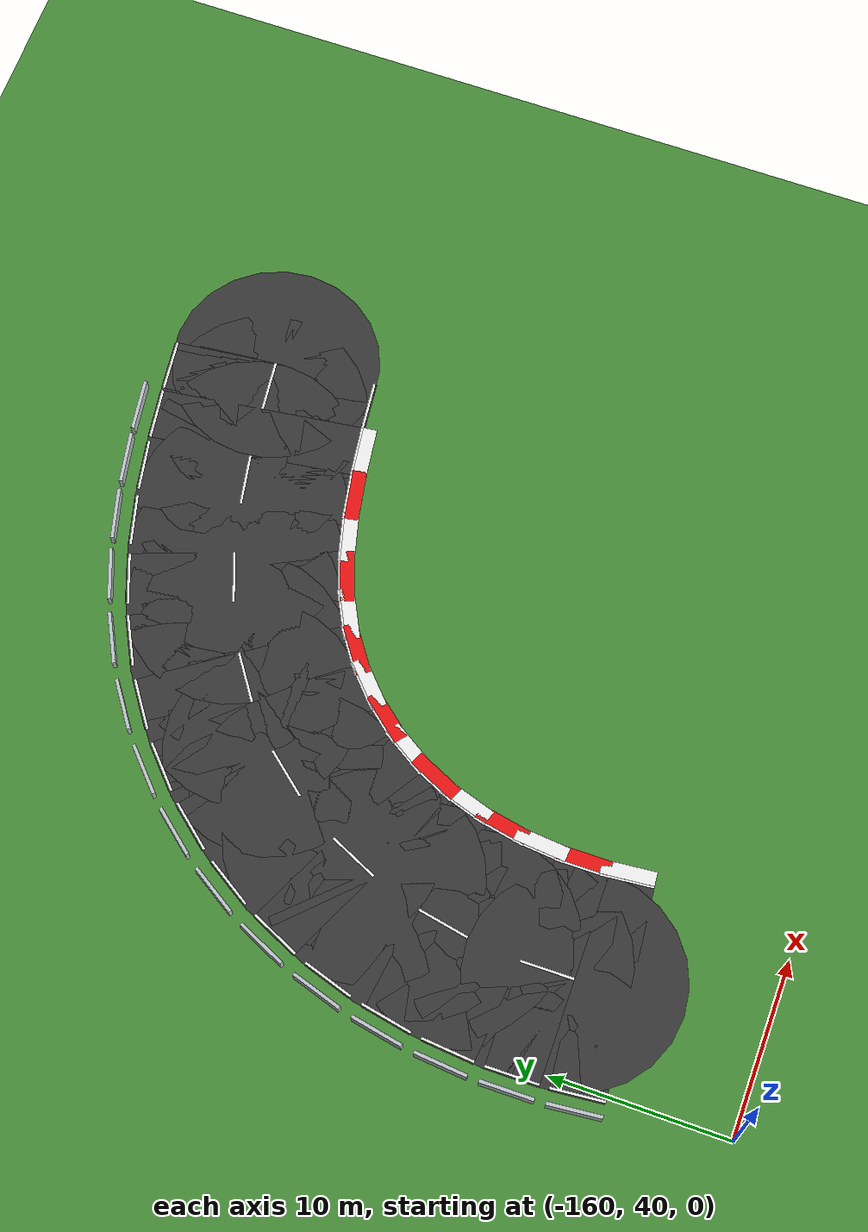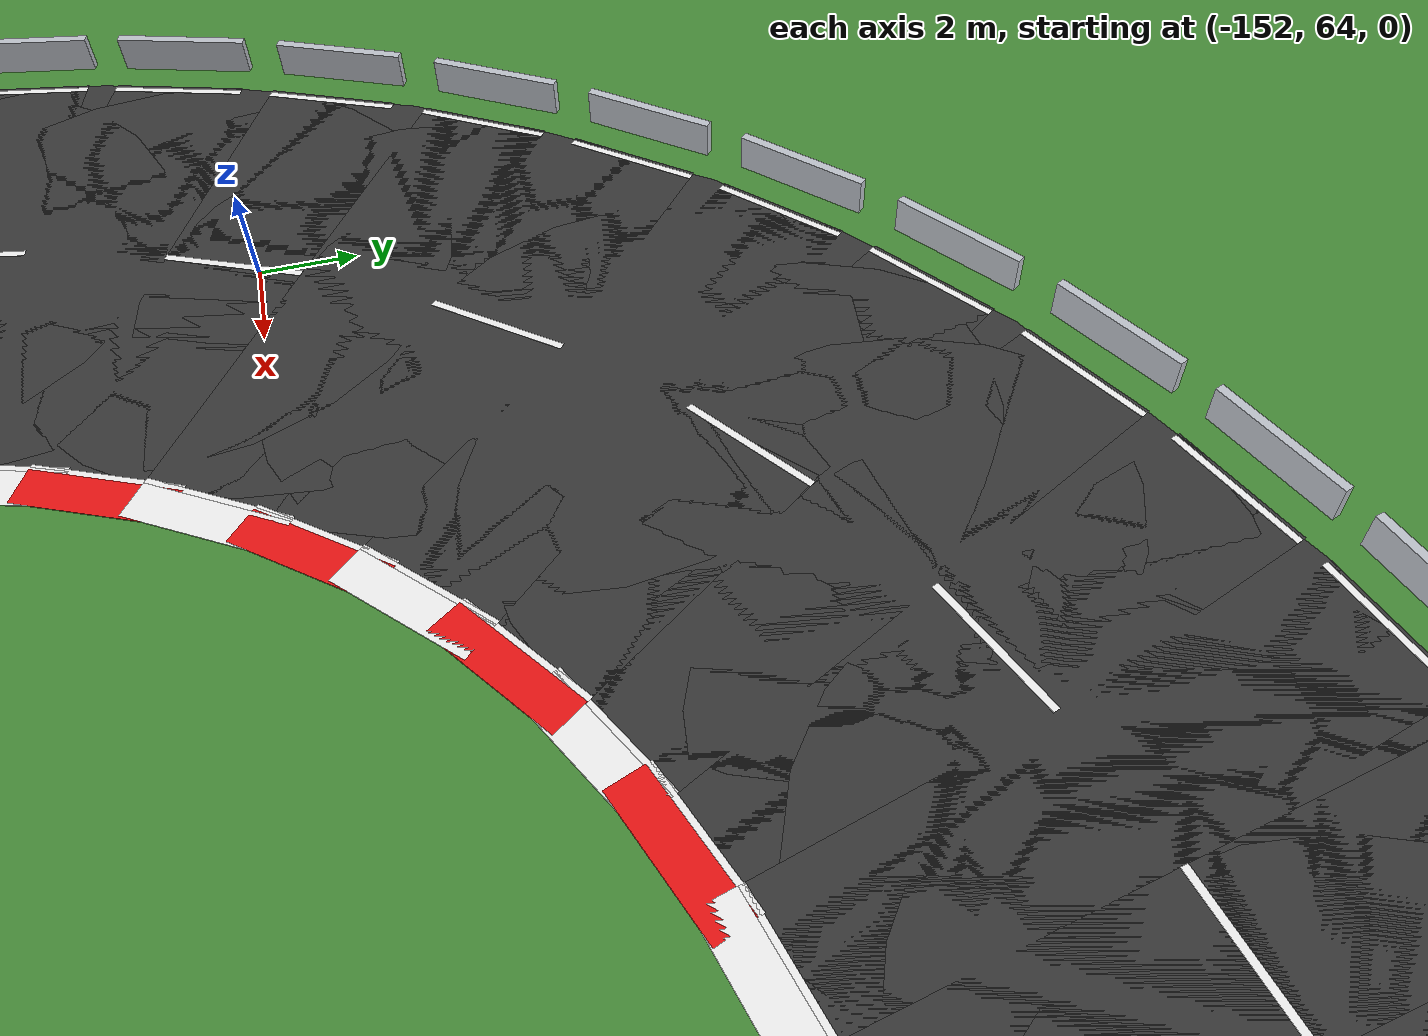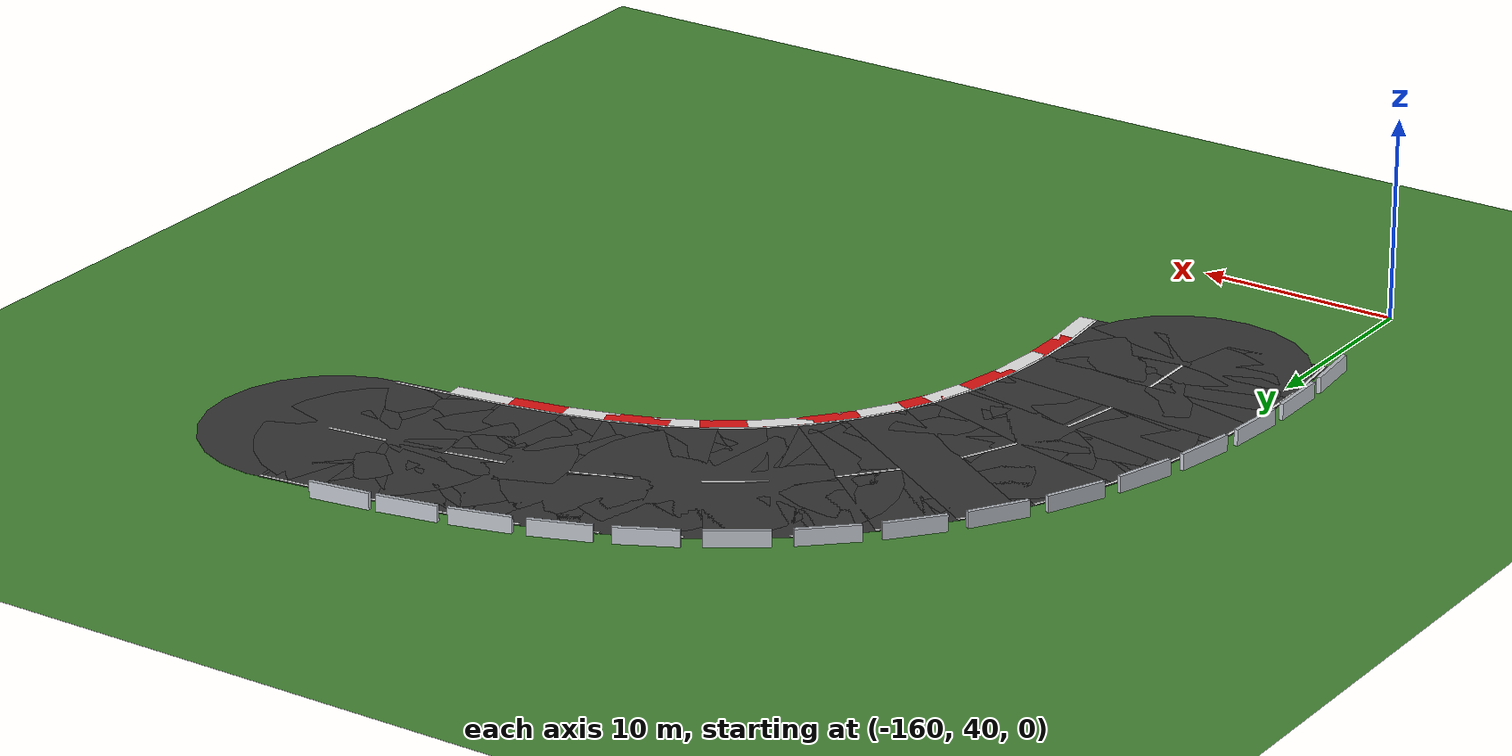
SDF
<sdf version="1.6">
 <world name="sem_silesia_ring_2026">
  <model name="ground_plane">
   <static>true</static>
   <link name="link">
    <collision name="collision">
     <geometry><plane><normal>0 0 1</normal><size>1200 1200</size></plane></geometry>
     <surface><friction><ode><mu>0.6</mu><mu2>0.6</mu2></ode></friction></surface>
    </collision>
    <visual name="visual">
     <geometry><plane><normal>0 0 1</normal><size>1200 1200</size></plane></geometry>
     <material><ambient>0.28 0.55 0.22 1</ambient><diffuse>0.28 0.55 0.22 1</diffuse></material>
    </visual>
   </link>
  </model>
  <model name="road_s366">
   <static>true</static>
   <pose>-127.7644 77.7437 0.0030 0 0 -3.0303</pose>
   <link name="link">
    <visual name="v">
     <geometry><box><size>3.0025 12.0000 0.0060</size></box></geometry>
     <material><ambient>0.22 0.22 0.22 1</ambient><diffuse>0.22 0.22 0.22 1</diffuse></material>
    </visual>
    <collision name="c">
     <geometry><box><size>3.0025 12.0000 0.0060</size></box></geometry>
     <surface><friction><ode><mu>0.9</mu><mu2>0.9</mu2></ode></friction></surface>
    </collision>
   </link>
  </model>
  <model name="road_jnt366">
   <static>true</static>
   <pose>-126.2725 77.9104 0.0030 0 0 0</pose>
   <link name="link">
    <visual name="v">
     <geometry><cylinder><radius>6.0000</radius><length>0.0060</length></cylinder></geometry>
     <material><ambient>0.22 0.22 0.22 1</ambient><diffuse>0.22 0.22 0.22 1</diffuse></material>
    </visual>
    <collision name="c">
     <geometry><cylinder><radius>6.0000</radius><length>0.0060</length></cylinder></geometry>
     <surface><friction><ode><mu>0.9</mu><mu2>0.9</mu2></ode></friction></surface>
    </collision>
   </link>
  </model>
  <model name="wl_L_s366">
   <static>true</static>
   <pose>-127.1150 71.9299 0.0070 0 0 -3.0303</pose>
   <link name="link">
    <visual name="v">
     <geometry><box><size>3.0025 0.1500 0.0080</size></box></geometry>
     <material><ambient>0.95 0.95 0.95 1</ambient><diffuse>0.95 0.95 0.95 1</diffuse></material>
    </visual>
   </link>
  </model>
  <model name="wl_R_s366">
   <static>true</static>
   <pose>-128.4139 83.5576 0.0070 0 0 -3.0303</pose>
   <link name="link">
    <visual name="v">
     <geometry><box><size>3.0025 0.1500 0.0080</size></box></geometry>
     <material><ambient>0.95 0.95 0.95 1</ambient><diffuse>0.95 0.95 0.95 1</diffuse></material>
    </visual>
   </link>
  </model>
  <model name="cd_s366">
   <static>true</static>
   <pose>-127.7644 77.7437 0.0070 0 0 -3.0303</pose>
   <link name="link">
    <visual name="v">
     <geometry><box><size>3.0025 0.1500 0.0080</size></box></geometry>
     <material><ambient>0.95 0.95 0.95 1</ambient><diffuse>0.95 0.95 0.95 1</diffuse></material>
    </visual>
   </link>
  </model>
  <model name="road_s367">
   <static>true</static>
   <pose>-130.7433 77.3702 0.0030 0 0 -3.0033</pose>
   <link name="link">
    <visual name="v">
     <geometry><box><size>3.0024 12.0000 0.0060</size></box></geometry>
     <material><ambient>0.22 0.22 0.22 1</ambient><diffuse>0.22 0.22 0.22 1</diffuse></material>
    </visual>
    <collision name="c">
     <geometry><box><size>3.0024 12.0000 0.0060</size></box></geometry>
     <surface><friction><ode><mu>0.9</mu><mu2>0.9</mu2></ode></friction></surface>
    </collision>
   </link>
  </model>
  <model name="road_jnt367">
   <static>true</static>
   <pose>-129.2564 77.5771 0.0030 0 0 0</pose>
   <link name="link">
    <visual name="v">
     <geometry><cylinder><radius>6.0000</radius><length>0.0060</length></cylinder></geometry>
     <material><ambient>0.22 0.22 0.22 1</ambient><diffuse>0.22 0.22 0.22 1</diffuse></material>
    </visual>
    <collision name="c">
     <geometry><cylinder><radius>6.0000</radius><length>0.0060</length></cylinder></geometry>
     <surface><friction><ode><mu>0.9</mu><mu2>0.9</mu2></ode></friction></surface>
    </collision>
   </link>
  </model>
  <model name="wl_L_s367">
   <static>true</static>
   <pose>-129.9370 71.5760 0.0070 0 0 -3.0033</pose>
   <link name="link">
    <visual name="v">
     <geometry><box><size>3.0024 0.1500 0.0080</size></box></geometry>
     <material><ambient>0.95 0.95 0.95 1</ambient><diffuse>0.95 0.95 0.95 1</diffuse></material>
    </visual>
   </link>
  </model>
  <model name="wl_R_s367">
   <static>true</static>
   <pose>-131.5495 83.1643 0.0070 0 0 -3.0033</pose>
   <link name="link">
    <visual name="v">
     <geometry><box><size>3.0024 0.1500 0.0080</size></box></geometry>
     <material><ambient>0.95 0.95 0.95 1</ambient><diffuse>0.95 0.95 0.95 1</diffuse></material>
    </visual>
   </link>
  </model>
  <model name="kerb_L_367">
   <static>true</static>
   <pose>-129.8750 71.1303 0.0120 0 0 -3.0033</pose>
   <link name="link">
    <visual name="v">
     <geometry><box><size>3.0024 0.8000 0.0160</size></box></geometry>
     <material><ambient>0.95 0.95 0.95 1</ambient><diffuse>0.95 0.95 0.95 1</diffuse></material>
    </visual>
   </link>
  </model>
  <model name="arm_outR_367">
   <static>true</static>
   <pose>-131.6804 84.1053 0.4000 0 0 -3.0033</pose>
   <link name="link">
    <visual name="v">
     <geometry><box><size>3.0024 0.2000 0.8000</size></box></geometry>
     <material><ambient>0.75 0.77 0.80 1</ambient><diffuse>0.75 0.77 0.80 1</diffuse></material>
    </visual>
    <collision name="c">
     <geometry><box><size>3.0024 0.2000 0.8000</size></box></geometry>
     <surface><friction><ode><mu>0.8</mu><mu2>0.8</mu2></ode></friction></surface>
    </collision>
   </link>
  </model>
  <model name="road_s368">
   <static>true</static>
   <pose>-133.7053 76.8858 0.0030 0 0 -2.9557</pose>
   <link name="link">
    <visual name="v">
     <geometry><box><size>3.0021 12.0000 0.0060</size></box></geometry>
     <material><ambient>0.22 0.22 0.22 1</ambient><diffuse>0.22 0.22 0.22 1</diffuse></material>
    </visual>
    <collision name="c">
     <geometry><box><size>3.0021 12.0000 0.0060</size></box></geometry>
     <surface><friction><ode><mu>0.9</mu><mu2>0.9</mu2></ode></friction></surface>
    </collision>
   </link>
  </model>
  <model name="road_jnt368">
   <static>true</static>
   <pose>-132.2301 77.1633 0.0030 0 0 0</pose>
   <link name="link">
    <visual name="v">
     <geometry><cylinder><radius>6.0000</radius><length>0.0060</length></cylinder></geometry>
     <material><ambient>0.22 0.22 0.22 1</ambient><diffuse>0.22 0.22 0.22 1</diffuse></material>
    </visual>
    <collision name="c">
     <geometry><cylinder><radius>6.0000</radius><length>0.0060</length></cylinder></geometry>
     <surface><friction><ode><mu>0.9</mu><mu2>0.9</mu2></ode></friction></surface>
    </collision>
   </link>
  </model>
  <model name="wl_L_s368">
   <static>true</static>
   <pose>-132.6238 71.1366 0.0070 0 0 -2.9557</pose>
   <link name="link">
    <visual name="v">
     <geometry><box><size>3.0021 0.1500 0.0080</size></box></geometry>
     <material><ambient>0.95 0.95 0.95 1</ambient><diffuse>0.95 0.95 0.95 1</diffuse></material>
    </visual>
   </link>
  </model>
  <model name="wl_R_s368">
   <static>true</static>
   <pose>-134.7868 82.6350 0.0070 0 0 -2.9557</pose>
   <link name="link">
    <visual name="v">
     <geometry><box><size>3.0021 0.1500 0.0080</size></box></geometry>
     <material><ambient>0.95 0.95 0.95 1</ambient><diffuse>0.95 0.95 0.95 1</diffuse></material>
    </visual>
   </link>
  </model>
  <model name="cd_s368">
   <static>true</static>
   <pose>-133.7053 76.8858 0.0070 0 0 -2.9557</pose>
   <link name="link">
    <visual name="v">
     <geometry><box><size>3.0021 0.1500 0.0080</size></box></geometry>
     <material><ambient>0.95 0.95 0.95 1</ambient><diffuse>0.95 0.95 0.95 1</diffuse></material>
    </visual>
   </link>
  </model>
  <model name="kerb_L_368">
   <static>true</static>
   <pose>-132.5407 70.6944 0.0120 0 0 -2.9557</pose>
   <link name="link">
    <visual name="v">
     <geometry><box><size>3.0021 0.8000 0.0160</size></box></geometry>
     <material><ambient>0.92 0.08 0.08 1</ambient><diffuse>0.92 0.08 0.08 1</diffuse></material>
    </visual>
   </link>
  </model>
  <model name="arm_outR_368">
   <static>true</static>
   <pose>-134.9624 83.5686 0.4000 0 0 -2.9557</pose>
   <link name="link">
    <visual name="v">
     <geometry><box><size>3.0021 0.2000 0.8000</size></box></geometry>
     <material><ambient>0.75 0.77 0.80 1</ambient><diffuse>0.75 0.77 0.80 1</diffuse></material>
    </visual>
    <collision name="c">
     <geometry><box><size>3.0021 0.2000 0.8000</size></box></geometry>
     <surface><friction><ode><mu>0.8</mu><mu2>0.8</mu2></ode></friction></surface>
    </collision>
   </link>
  </model>
  <model name="road_s369">
   <static>true</static>
   <pose>-136.6322 76.2275 0.0030 0 0 -2.8851</pose>
   <link name="link">
    <visual name="v">
     <geometry><box><size>3.0017 12.0000 0.0060</size></box></geometry>
     <material><ambient>0.22 0.22 0.22 1</ambient><diffuse>0.22 0.22 0.22 1</diffuse></material>
    </visual>
    <collision name="c">
     <geometry><box><size>3.0017 12.0000 0.0060</size></box></geometry>
     <surface><friction><ode><mu>0.9</mu><mu2>0.9</mu2></ode></friction></surface>
    </collision>
   </link>
  </model>
  <model name="road_jnt369">
   <static>true</static>
   <pose>-135.1805 76.6083 0.0030 0 0 0</pose>
   <link name="link">
    <visual name="v">
     <geometry><cylinder><radius>6.0000</radius><length>0.0060</length></cylinder></geometry>
     <material><ambient>0.22 0.22 0.22 1</ambient><diffuse>0.22 0.22 0.22 1</diffuse></material>
    </visual>
    <collision name="c">
     <geometry><cylinder><radius>6.0000</radius><length>0.0060</length></cylinder></geometry>
     <surface><friction><ode><mu>0.9</mu><mu2>0.9</mu2></ode></friction></surface>
    </collision>
   </link>
  </model>
  <model name="wl_L_s369">
   <static>true</static>
   <pose>-135.1480 70.5689 0.0070 0 0 -2.8851</pose>
   <link name="link">
    <visual name="v">
     <geometry><box><size>3.0017 0.1500 0.0080</size></box></geometry>
     <material><ambient>0.95 0.95 0.95 1</ambient><diffuse>0.95 0.95 0.95 1</diffuse></material>
    </visual>
   </link>
  </model>
  <model name="wl_R_s369">
   <static>true</static>
   <pose>-138.1164 81.8861 0.0070 0 0 -2.8851</pose>
   <link name="link">
    <visual name="v">
     <geometry><box><size>3.0017 0.1500 0.0080</size></box></geometry>
     <material><ambient>0.95 0.95 0.95 1</ambient><diffuse>0.95 0.95 0.95 1</diffuse></material>
    </visual>
   </link>
  </model>
  <model name="kerb_L_369">
   <static>true</static>
   <pose>-135.0339 70.1337 0.0120 0 0 -2.8851</pose>
   <link name="link">
    <visual name="v">
     <geometry><box><size>3.0017 0.8000 0.0160</size></box></geometry>
     <material><ambient>0.95 0.95 0.95 1</ambient><diffuse>0.95 0.95 0.95 1</diffuse></material>
    </visual>
   </link>
  </model>
  <model name="arm_outR_369">
   <static>true</static>
   <pose>-138.3574 82.8050 0.4000 0 0 -2.8851</pose>
   <link name="link">
    <visual name="v">
     <geometry><box><size>3.0017 0.2000 0.8000</size></box></geometry>
     <material><ambient>0.75 0.77 0.80 1</ambient><diffuse>0.75 0.77 0.80 1</diffuse></material>
    </visual>
    <collision name="c">
     <geometry><box><size>3.0017 0.2000 0.8000</size></box></geometry>
     <surface><friction><ode><mu>0.8</mu><mu2>0.8</mu2></ode></friction></surface>
    </collision>
   </link>
  </model>
  <model name="road_s370">
   <static>true</static>
   <pose>-139.4925 75.3294 0.0030 0 0 -2.7896</pose>
   <link name="link">
    <visual name="v">
     <geometry><box><size>3.0011 12.0000 0.0060</size></box></geometry>
     <material><ambient>0.22 0.22 0.22 1</ambient><diffuse>0.22 0.22 0.22 1</diffuse></material>
    </visual>
    <collision name="c">
     <geometry><box><size>3.0011 12.0000 0.0060</size></box></geometry>
     <surface><friction><ode><mu>0.9</mu><mu2>0.9</mu2></ode></friction></surface>
    </collision>
   </link>
  </model>
  <model name="road_jnt370">
   <static>true</static>
   <pose>-138.0839 75.8468 0.0030 0 0 0</pose>
   <link name="link">
    <visual name="v">
     <geometry><cylinder><radius>6.0000</radius><length>0.0060</length></cylinder></geometry>
     <material><ambient>0.22 0.22 0.22 1</ambient><diffuse>0.22 0.22 0.22 1</diffuse></material>
    </visual>
    <collision name="c">
     <geometry><cylinder><radius>6.0000</radius><length>0.0060</length></cylinder></geometry>
     <surface><friction><ode><mu>0.9</mu><mu2>0.9</mu2></ode></friction></surface>
    </collision>
   </link>
  </model>
  <model name="wl_L_s370">
   <static>true</static>
   <pose>-137.4756 69.8381 0.0070 0 0 -2.7896</pose>
   <link name="link">
    <visual name="v">
     <geometry><box><size>3.0011 0.1500 0.0080</size></box></geometry>
     <material><ambient>0.95 0.95 0.95 1</ambient><diffuse>0.95 0.95 0.95 1</diffuse></material>
    </visual>
   </link>
  </model>
  <model name="wl_R_s370">
   <static>true</static>
   <pose>-141.5094 80.8207 0.0070 0 0 -2.7896</pose>
   <link name="link">
    <visual name="v">
     <geometry><box><size>3.0011 0.1500 0.0080</size></box></geometry>
     <material><ambient>0.95 0.95 0.95 1</ambient><diffuse>0.95 0.95 0.95 1</diffuse></material>
    </visual>
   </link>
  </model>
  <model name="cd_s370">
   <static>true</static>
   <pose>-139.4925 75.3294 0.0070 0 0 -2.7896</pose>
   <link name="link">
    <visual name="v">
     <geometry><box><size>3.0011 0.1500 0.0080</size></box></geometry>
     <material><ambient>0.95 0.95 0.95 1</ambient><diffuse>0.95 0.95 0.95 1</diffuse></material>
    </visual>
   </link>
  </model>
  <model name="kerb_L_370">
   <static>true</static>
   <pose>-137.3204 69.4157 0.0120 0 0 -2.7896</pose>
   <link name="link">
    <visual name="v">
     <geometry><box><size>3.0011 0.8000 0.0160</size></box></geometry>
     <material><ambient>0.92 0.08 0.08 1</ambient><diffuse>0.92 0.08 0.08 1</diffuse></material>
    </visual>
   </link>
  </model>
  <model name="arm_outR_370">
   <static>true</static>
   <pose>-141.8369 81.7125 0.4000 0 0 -2.7896</pose>
   <link name="link">
    <visual name="v">
     <geometry><box><size>3.0011 0.2000 0.8000</size></box></geometry>
     <material><ambient>0.75 0.77 0.80 1</ambient><diffuse>0.75 0.77 0.80 1</diffuse></material>
    </visual>
    <collision name="c">
     <geometry><box><size>3.0011 0.2000 0.8000</size></box></geometry>
     <surface><friction><ode><mu>0.8</mu><mu2>0.8</mu2></ode></friction></surface>
    </collision>
   </link>
  </model>
  <model name="road_s371">
   <static>true</static>
   <pose>-142.2370 74.1297 0.0030 0 0 -2.6694</pose>
   <link name="link">
    <visual name="v">
     <geometry><box><size>3.0004 12.0000 0.0060</size></box></geometry>
     <material><ambient>0.22 0.22 0.22 1</ambient><diffuse>0.22 0.22 0.22 1</diffuse></material>
    </visual>
    <collision name="c">
     <geometry><box><size>3.0004 12.0000 0.0060</size></box></geometry>
     <surface><friction><ode><mu>0.9</mu><mu2>0.9</mu2></ode></friction></surface>
    </collision>
   </link>
  </model>
  <model name="road_jnt371">
   <static>true</static>
   <pose>-140.9010 74.8121 0.0030 0 0 0</pose>
   <link name="link">
    <visual name="v">
     <geometry><cylinder><radius>6.0000</radius><length>0.0060</length></cylinder></geometry>
     <material><ambient>0.22 0.22 0.22 1</ambient><diffuse>0.22 0.22 0.22 1</diffuse></material>
    </visual>
    <collision name="c">
     <geometry><cylinder><radius>6.0000</radius><length>0.0060</length></cylinder></geometry>
     <surface><friction><ode><mu>0.9</mu><mu2>0.9</mu2></ode></friction></surface>
    </collision>
   </link>
  </model>
  <model name="wl_L_s371">
   <static>true</static>
   <pose>-139.5761 68.9199 0.0070 0 0 -2.6694</pose>
   <link name="link">
    <visual name="v">
     <geometry><box><size>3.0004 0.1500 0.0080</size></box></geometry>
     <material><ambient>0.95 0.95 0.95 1</ambient><diffuse>0.95 0.95 0.95 1</diffuse></material>
    </visual>
   </link>
  </model>
  <model name="wl_R_s371">
   <static>true</static>
   <pose>-144.8979 79.3395 0.0070 0 0 -2.6694</pose>
   <link name="link">
    <visual name="v">
     <geometry><box><size>3.0004 0.1500 0.0080</size></box></geometry>
     <material><ambient>0.95 0.95 0.95 1</ambient><diffuse>0.95 0.95 0.95 1</diffuse></material>
    </visual>
   </link>
  </model>
  <model name="kerb_L_371">
   <static>true</static>
   <pose>-139.3714 68.5192 0.0120 0 0 -2.6694</pose>
   <link name="link">
    <visual name="v">
     <geometry><box><size>3.0004 0.8000 0.0160</size></box></geometry>
     <material><ambient>0.95 0.95 0.95 1</ambient><diffuse>0.95 0.95 0.95 1</diffuse></material>
    </visual>
   </link>
  </model>
  <model name="arm_outR_371">
   <static>true</static>
   <pose>-145.3301 80.1856 0.4000 0 0 -2.6694</pose>
   <link name="link">
    <visual name="v">
     <geometry><box><size>3.0004 0.2000 0.8000</size></box></geometry>
     <material><ambient>0.75 0.77 0.80 1</ambient><diffuse>0.75 0.77 0.80 1</diffuse></material>
    </visual>
    <collision name="c">
     <geometry><box><size>3.0004 0.2000 0.8000</size></box></geometry>
     <surface><friction><ode><mu>0.8</mu><mu2>0.8</mu2></ode></friction></surface>
    </collision>
   </link>
  </model>
  <model name="road_s372">
   <static>true</static>
   <pose>-144.8017 72.5869 0.0030 0 0 -2.5307</pose>
   <link name="link">
    <visual name="v">
     <geometry><box><size>3.0000 12.0000 0.0060</size></box></geometry>
     <material><ambient>0.22 0.22 0.22 1</ambient><diffuse>0.22 0.22 0.22 1</diffuse></material>
    </visual>
    <collision name="c">
     <geometry><box><size>3.0000 12.0000 0.0060</size></box></geometry>
     <surface><friction><ode><mu>0.9</mu><mu2>0.9</mu2></ode></friction></surface>
    </collision>
   </link>
  </model>
  <model name="road_jnt372">
   <static>true</static>
   <pose>-143.5730 73.4474 0.0030 0 0 0</pose>
   <link name="link">
    <visual name="v">
     <geometry><cylinder><radius>6.0000</radius><length>0.0060</length></cylinder></geometry>
     <material><ambient>0.22 0.22 0.22 1</ambient><diffuse>0.22 0.22 0.22 1</diffuse></material>
    </visual>
    <collision name="c">
     <geometry><cylinder><radius>6.0000</radius><length>0.0060</length></cylinder></geometry>
     <surface><friction><ode><mu>0.9</mu><mu2>0.9</mu2></ode></friction></surface>
    </collision>
   </link>
  </model>
  <model name="wl_L_s372">
   <static>true</static>
   <pose>-141.4461 67.7950 0.0070 0 0 -2.5307</pose>
   <link name="link">
    <visual name="v">
     <geometry><box><size>3.0000 0.1500 0.0080</size></box></geometry>
     <material><ambient>0.95 0.95 0.95 1</ambient><diffuse>0.95 0.95 0.95 1</diffuse></material>
    </visual>
   </link>
  </model>
  <model name="wl_R_s372">
   <static>true</static>
   <pose>-148.1574 77.3788 0.0070 0 0 -2.5307</pose>
   <link name="link">
    <visual name="v">
     <geometry><box><size>3.0000 0.1500 0.0080</size></box></geometry>
     <material><ambient>0.95 0.95 0.95 1</ambient><diffuse>0.95 0.95 0.95 1</diffuse></material>
    </visual>
   </link>
  </model>
  <model name="cd_s372">
   <static>true</static>
   <pose>-144.8017 72.5869 0.0070 0 0 -2.5307</pose>
   <link name="link">
    <visual name="v">
     <geometry><box><size>3.0000 0.1500 0.0080</size></box></geometry>
     <material><ambient>0.95 0.95 0.95 1</ambient><diffuse>0.95 0.95 0.95 1</diffuse></material>
    </visual>
   </link>
  </model>
  <model name="kerb_L_372">
   <static>true</static>
   <pose>-141.1880 67.4264 0.0120 0 0 -2.5307</pose>
   <link name="link">
    <visual name="v">
     <geometry><box><size>3.0000 0.8000 0.0160</size></box></geometry>
     <material><ambient>0.92 0.08 0.08 1</ambient><diffuse>0.92 0.08 0.08 1</diffuse></material>
    </visual>
   </link>
  </model>
  <model name="arm_outR_372">
   <static>true</static>
   <pose>-148.7023 78.1570 0.4000 0 0 -2.5307</pose>
   <link name="link">
    <visual name="v">
     <geometry><box><size>3.0000 0.2000 0.8000</size></box></geometry>
     <material><ambient>0.75 0.77 0.80 1</ambient><diffuse>0.75 0.77 0.80 1</diffuse></material>
    </visual>
    <collision name="c">
     <geometry><box><size>3.0000 0.2000 0.8000</size></box></geometry>
     <surface><friction><ode><mu>0.8</mu><mu2>0.8</mu2></ode></friction></surface>
    </collision>
   </link>
  </model>
  <model name="road_s373">
   <static>true</static>
   <pose>-147.1307 70.7067 0.0030 0 0 -2.3942</pose>
   <link name="link">
    <visual name="v">
     <geometry><box><size>3.0004 12.0000 0.0060</size></box></geometry>
     <material><ambient>0.22 0.22 0.22 1</ambient><diffuse>0.22 0.22 0.22 1</diffuse></material>
    </visual>
    <collision name="c">
     <geometry><box><size>3.0004 12.0000 0.0060</size></box></geometry>
     <surface><friction><ode><mu>0.9</mu><mu2>0.9</mu2></ode></friction></surface>
    </collision>
   </link>
  </model>
  <model name="road_jnt373">
   <static>true</static>
   <pose>-146.0304 71.7265 0.0030 0 0 0</pose>
   <link name="link">
    <visual name="v">
     <geometry><cylinder><radius>6.0000</radius><length>0.0060</length></cylinder></geometry>
     <material><ambient>0.22 0.22 0.22 1</ambient><diffuse>0.22 0.22 0.22 1</diffuse></material>
    </visual>
    <collision name="c">
     <geometry><cylinder><radius>6.0000</radius><length>0.0060</length></cylinder></geometry>
     <surface><friction><ode><mu>0.9</mu><mu2>0.9</mu2></ode></friction></surface>
    </collision>
   </link>
  </model>
  <model name="wl_L_s373">
   <static>true</static>
   <pose>-143.1542 66.4161 0.0070 0 0 -2.3942</pose>
   <link name="link">
    <visual name="v">
     <geometry><box><size>3.0004 0.1500 0.0080</size></box></geometry>
     <material><ambient>0.95 0.95 0.95 1</ambient><diffuse>0.95 0.95 0.95 1</diffuse></material>
    </visual>
   </link>
  </model>
  <model name="wl_R_s373">
   <static>true</static>
   <pose>-151.1073 74.9974 0.0070 0 0 -2.3942</pose>
   <link name="link">
    <visual name="v">
     <geometry><box><size>3.0004 0.1500 0.0080</size></box></geometry>
     <material><ambient>0.95 0.95 0.95 1</ambient><diffuse>0.95 0.95 0.95 1</diffuse></material>
    </visual>
   </link>
  </model>
  <model name="kerb_L_373">
   <static>true</static>
   <pose>-142.8483 66.0861 0.0120 0 0 -2.3942</pose>
   <link name="link">
    <visual name="v">
     <geometry><box><size>3.0004 0.8000 0.0160</size></box></geometry>
     <material><ambient>0.95 0.95 0.95 1</ambient><diffuse>0.95 0.95 0.95 1</diffuse></material>
    </visual>
   </link>
  </model>
  <model name="arm_outR_373">
   <static>true</static>
   <pose>-151.7531 75.6941 0.4000 0 0 -2.3942</pose>
   <link name="link">
    <visual name="v">
     <geometry><box><size>3.0004 0.2000 0.8000</size></box></geometry>
     <material><ambient>0.75 0.77 0.80 1</ambient><diffuse>0.75 0.77 0.80 1</diffuse></material>
    </visual>
    <collision name="c">
     <geometry><box><size>3.0004 0.2000 0.8000</size></box></geometry>
     <surface><friction><ode><mu>0.8</mu><mu2>0.8</mu2></ode></friction></surface>
    </collision>
   </link>
  </model>
  <model name="road_s374">
   <static>true</static>
   <pose>-149.1899 68.5332 0.0030 0 0 -2.2642</pose>
   <link name="link">
    <visual name="v">
     <geometry><box><size>3.0005 12.0000 0.0060</size></box></geometry>
     <material><ambient>0.22 0.22 0.22 1</ambient><diffuse>0.22 0.22 0.22 1</diffuse></material>
    </visual>
    <collision name="c">
     <geometry><box><size>3.0005 12.0000 0.0060</size></box></geometry>
     <surface><friction><ode><mu>0.9</mu><mu2>0.9</mu2></ode></friction></surface>
    </collision>
   </link>
  </model>
  <model name="road_jnt374">
   <static>true</static>
   <pose>-148.2310 69.6870 0.0030 0 0 0</pose>
   <link name="link">
    <visual name="v">
     <geometry><cylinder><radius>6.0000</radius><length>0.0060</length></cylinder></geometry>
     <material><ambient>0.22 0.22 0.22 1</ambient><diffuse>0.22 0.22 0.22 1</diffuse></material>
    </visual>
    <collision name="c">
     <geometry><cylinder><radius>6.0000</radius><length>0.0060</length></cylinder></geometry>
     <surface><friction><ode><mu>0.9</mu><mu2>0.9</mu2></ode></friction></surface>
    </collision>
   </link>
  </model>
  <model name="wl_L_s374">
   <static>true</static>
   <pose>-144.6907 64.7942 0.0070 0 0 -2.2642</pose>
   <link name="link">
    <visual name="v">
     <geometry><box><size>3.0005 0.1500 0.0080</size></box></geometry>
     <material><ambient>0.95 0.95 0.95 1</ambient><diffuse>0.95 0.95 0.95 1</diffuse></material>
    </visual>
   </link>
  </model>
  <model name="wl_R_s374">
   <static>true</static>
   <pose>-153.6891 72.2721 0.0070 0 0 -2.2642</pose>
   <link name="link">
    <visual name="v">
     <geometry><box><size>3.0005 0.1500 0.0080</size></box></geometry>
     <material><ambient>0.95 0.95 0.95 1</ambient><diffuse>0.95 0.95 0.95 1</diffuse></material>
    </visual>
   </link>
  </model>
  <model name="cd_s374">
   <static>true</static>
   <pose>-149.1899 68.5332 0.0070 0 0 -2.2642</pose>
   <link name="link">
    <visual name="v">
     <geometry><box><size>3.0005 0.1500 0.0080</size></box></geometry>
     <material><ambient>0.95 0.95 0.95 1</ambient><diffuse>0.95 0.95 0.95 1</diffuse></material>
    </visual>
   </link>
  </model>
  <model name="kerb_L_374">
   <static>true</static>
   <pose>-144.3446 64.5066 0.0120 0 0 -2.2642</pose>
   <link name="link">
    <visual name="v">
     <geometry><box><size>3.0005 0.8000 0.0160</size></box></geometry>
     <material><ambient>0.92 0.08 0.08 1</ambient><diffuse>0.92 0.08 0.08 1</diffuse></material>
    </visual>
   </link>
  </model>
  <model name="arm_outR_374">
   <static>true</static>
   <pose>-154.4197 72.8793 0.4000 0 0 -2.2642</pose>
   <link name="link">
    <visual name="v">
     <geometry><box><size>3.0005 0.2000 0.8000</size></box></geometry>
     <material><ambient>0.75 0.77 0.80 1</ambient><diffuse>0.75 0.77 0.80 1</diffuse></material>
    </visual>
    <collision name="c">
     <geometry><box><size>3.0005 0.2000 0.8000</size></box></geometry>
     <surface><friction><ode><mu>0.8</mu><mu2>0.8</mu2></ode></friction></surface>
    </collision>
   </link>
  </model>
  <model name="road_s375">
   <static>true</static>
   <pose>-150.9483 66.1100 0.0030 0 0 -2.1329</pose>
   <link name="link">
    <visual name="v">
     <geometry><box><size>3.0003 12.0000 0.0060</size></box></geometry>
     <material><ambient>0.22 0.22 0.22 1</ambient><diffuse>0.22 0.22 0.22 1</diffuse></material>
    </visual>
    <collision name="c">
     <geometry><box><size>3.0003 12.0000 0.0060</size></box></geometry>
     <surface><friction><ode><mu>0.9</mu><mu2>0.9</mu2></ode></friction></surface>
    </collision>
   </link>
  </model>
  <model name="road_jnt375">
   <static>true</static>
   <pose>-150.1487 67.3793 0.0030 0 0 0</pose>
   <link name="link">
    <visual name="v">
     <geometry><cylinder><radius>6.0000</radius><length>0.0060</length></cylinder></geometry>
     <material><ambient>0.22 0.22 0.22 1</ambient><diffuse>0.22 0.22 0.22 1</diffuse></material>
    </visual>
    <collision name="c">
     <geometry><cylinder><radius>6.0000</radius><length>0.0060</length></cylinder></geometry>
     <surface><friction><ode><mu>0.9</mu><mu2>0.9</mu2></ode></friction></surface>
    </collision>
   </link>
  </model>
  <model name="wl_L_s375">
   <static>true</static>
   <pose>-145.9986 62.9920 0.0070 0 0 -2.1329</pose>
   <link name="link">
    <visual name="v">
     <geometry><box><size>3.0003 0.1500 0.0080</size></box></geometry>
     <material><ambient>0.95 0.95 0.95 1</ambient><diffuse>0.95 0.95 0.95 1</diffuse></material>
    </visual>
   </link>
  </model>
  <model name="wl_R_s375">
   <static>true</static>
   <pose>-155.8981 69.2281 0.0070 0 0 -2.1329</pose>
   <link name="link">
    <visual name="v">
     <geometry><box><size>3.0003 0.1500 0.0080</size></box></geometry>
     <material><ambient>0.95 0.95 0.95 1</ambient><diffuse>0.95 0.95 0.95 1</diffuse></material>
    </visual>
   </link>
  </model>
  <model name="kerb_L_375">
   <static>true</static>
   <pose>-145.6178 62.7521 0.0120 0 0 -2.1329</pose>
   <link name="link">
    <visual name="v">
     <geometry><box><size>3.0003 0.8000 0.0160</size></box></geometry>
     <material><ambient>0.95 0.95 0.95 1</ambient><diffuse>0.95 0.95 0.95 1</diffuse></material>
    </visual>
   </link>
  </model>
  <model name="arm_outR_375">
   <static>true</static>
   <pose>-156.7019 69.7345 0.4000 0 0 -2.1329</pose>
   <link name="link">
    <visual name="v">
     <geometry><box><size>3.0003 0.2000 0.8000</size></box></geometry>
     <material><ambient>0.75 0.77 0.80 1</ambient><diffuse>0.75 0.77 0.80 1</diffuse></material>
    </visual>
    <collision name="c">
     <geometry><box><size>3.0003 0.2000 0.8000</size></box></geometry>
     <surface><friction><ode><mu>0.8</mu><mu2>0.8</mu2></ode></friction></surface>
    </collision>
   </link>
  </model>
  <model name="road_s376">
   <static>true</static>
   <pose>-152.3721 63.4766 0.0030 0 0 -2.0000</pose>
   <link name="link">
    <visual name="v">
     <geometry><box><size>3.0004 12.0000 0.0060</size></box></geometry>
     <material><ambient>0.22 0.22 0.22 1</ambient><diffuse>0.22 0.22 0.22 1</diffuse></material>
    </visual>
    <collision name="c">
     <geometry><box><size>3.0004 12.0000 0.0060</size></box></geometry>
     <surface><friction><ode><mu>0.9</mu><mu2>0.9</mu2></ode></friction></surface>
    </collision>
   </link>
  </model>
  <model name="road_jnt376">
   <static>true</static>
   <pose>-151.7479 64.8408 0.0030 0 0 0</pose>
   <link name="link">
    <visual name="v">
     <geometry><cylinder><radius>6.0000</radius><length>0.0060</length></cylinder></geometry>
     <material><ambient>0.22 0.22 0.22 1</ambient><diffuse>0.22 0.22 0.22 1</diffuse></material>
    </visual>
    <collision name="c">
     <geometry><cylinder><radius>6.0000</radius><length>0.0060</length></cylinder></geometry>
     <surface><friction><ode><mu>0.9</mu><mu2>0.9</mu2></ode></friction></surface>
    </collision>
   </link>
  </model>
  <model name="wl_L_s376">
   <static>true</static>
   <pose>-147.0526 61.0424 0.0070 0 0 -2.0000</pose>
   <link name="link">
    <visual name="v">
     <geometry><box><size>3.0004 0.1500 0.0080</size></box></geometry>
     <material><ambient>0.95 0.95 0.95 1</ambient><diffuse>0.95 0.95 0.95 1</diffuse></material>
    </visual>
   </link>
  </model>
  <model name="wl_R_s376">
   <static>true</static>
   <pose>-157.6916 65.9108 0.0070 0 0 -2.0000</pose>
   <link name="link">
    <visual name="v">
     <geometry><box><size>3.0004 0.1500 0.0080</size></box></geometry>
     <material><ambient>0.95 0.95 0.95 1</ambient><diffuse>0.95 0.95 0.95 1</diffuse></material>
    </visual>
   </link>
  </model>
  <model name="cd_s376">
   <static>true</static>
   <pose>-152.3721 63.4766 0.0070 0 0 -2.0000</pose>
   <link name="link">
    <visual name="v">
     <geometry><box><size>3.0004 0.1500 0.0080</size></box></geometry>
     <material><ambient>0.95 0.95 0.95 1</ambient><diffuse>0.95 0.95 0.95 1</diffuse></material>
    </visual>
   </link>
  </model>
  <model name="kerb_L_376">
   <static>true</static>
   <pose>-146.6435 60.8551 0.0120 0 0 -2.0000</pose>
   <link name="link">
    <visual name="v">
     <geometry><box><size>3.0004 0.8000 0.0160</size></box></geometry>
     <material><ambient>0.92 0.08 0.08 1</ambient><diffuse>0.92 0.08 0.08 1</diffuse></material>
    </visual>
   </link>
  </model>
  <model name="arm_outR_376">
   <static>true</static>
   <pose>-158.5555 66.3061 0.4000 0 0 -2.0000</pose>
   <link name="link">
    <visual name="v">
     <geometry><box><size>3.0004 0.2000 0.8000</size></box></geometry>
     <material><ambient>0.75 0.77 0.80 1</ambient><diffuse>0.75 0.77 0.80 1</diffuse></material>
    </visual>
    <collision name="c">
     <geometry><box><size>3.0004 0.2000 0.8000</size></box></geometry>
     <surface><friction><ode><mu>0.8</mu><mu2>0.8</mu2></ode></friction></surface>
    </collision>
   </link>
  </model>
  <model name="road_s377">
   <static>true</static>
   <pose>-153.4456 60.6809 0.0030 0 0 -1.8748</pose>
   <link name="link">
    <visual name="v">
     <geometry><box><size>3.0007 12.0000 0.0060</size></box></geometry>
     <material><ambient>0.22 0.22 0.22 1</ambient><diffuse>0.22 0.22 0.22 1</diffuse></material>
    </visual>
    <collision name="c">
     <geometry><box><size>3.0007 12.0000 0.0060</size></box></geometry>
     <surface><friction><ode><mu>0.9</mu><mu2>0.9</mu2></ode></friction></surface>
    </collision>
   </link>
  </model>
  <model name="road_jnt377">
   <static>true</static>
   <pose>-152.9964 62.1124 0.0030 0 0 0</pose>
   <link name="link">
    <visual name="v">
     <geometry><cylinder><radius>6.0000</radius><length>0.0060</length></cylinder></geometry>
     <material><ambient>0.22 0.22 0.22 1</ambient><diffuse>0.22 0.22 0.22 1</diffuse></material>
    </visual>
    <collision name="c">
     <geometry><cylinder><radius>6.0000</radius><length>0.0060</length></cylinder></geometry>
     <surface><friction><ode><mu>0.9</mu><mu2>0.9</mu2></ode></friction></surface>
    </collision>
   </link>
  </model>
  <model name="wl_L_s377">
   <static>true</static>
   <pose>-147.8638 58.9296 0.0070 0 0 -1.8748</pose>
   <link name="link">
    <visual name="v">
     <geometry><box><size>3.0007 0.1500 0.0080</size></box></geometry>
     <material><ambient>0.95 0.95 0.95 1</ambient><diffuse>0.95 0.95 0.95 1</diffuse></material>
    </visual>
   </link>
  </model>
  <model name="wl_R_s377">
   <static>true</static>
   <pose>-159.0273 62.4322 0.0070 0 0 -1.8748</pose>
   <link name="link">
    <visual name="v">
     <geometry><box><size>3.0007 0.1500 0.0080</size></box></geometry>
     <material><ambient>0.95 0.95 0.95 1</ambient><diffuse>0.95 0.95 0.95 1</diffuse></material>
    </visual>
   </link>
  </model>
  <model name="kerb_L_377">
   <static>true</static>
   <pose>-147.4345 58.7949 0.0120 0 0 -1.8748</pose>
   <link name="link">
    <visual name="v">
     <geometry><box><size>3.0007 0.8000 0.0160</size></box></geometry>
     <material><ambient>0.95 0.95 0.95 1</ambient><diffuse>0.95 0.95 0.95 1</diffuse></material>
    </visual>
   </link>
  </model>
  <model name="arm_outR_377">
   <static>true</static>
   <pose>-159.9337 62.7166 0.4000 0 0 -1.8748</pose>
   <link name="link">
    <visual name="v">
     <geometry><box><size>3.0007 0.2000 0.8000</size></box></geometry>
     <material><ambient>0.75 0.77 0.80 1</ambient><diffuse>0.75 0.77 0.80 1</diffuse></material>
    </visual>
    <collision name="c">
     <geometry><box><size>3.0007 0.2000 0.8000</size></box></geometry>
     <surface><friction><ode><mu>0.8</mu><mu2>0.8</mu2></ode></friction></surface>
    </collision>
   </link>
  </model>
  <model name="road_s378">
   <static>true</static>
   <pose>-154.1771 57.7756 0.0030 0 0 -1.7601</pose>
   <link name="link">
    <visual name="v">
     <geometry><box><size>3.0010 12.0000 0.0060</size></box></geometry>
     <material><ambient>0.22 0.22 0.22 1</ambient><diffuse>0.22 0.22 0.22 1</diffuse></material>
    </visual>
    <collision name="c">
     <geometry><box><size>3.0010 12.0000 0.0060</size></box></geometry>
     <surface><friction><ode><mu>0.9</mu><mu2>0.9</mu2></ode></friction></surface>
    </collision>
   </link>
  </model>
  <model name="road_jnt378">
   <static>true</static>
   <pose>-153.8947 59.2493 0.0030 0 0 0</pose>
   <link name="link">
    <visual name="v">
     <geometry><cylinder><radius>6.0000</radius><length>0.0060</length></cylinder></geometry>
     <material><ambient>0.22 0.22 0.22 1</ambient><diffuse>0.22 0.22 0.22 1</diffuse></material>
    </visual>
    <collision name="c">
     <geometry><cylinder><radius>6.0000</radius><length>0.0060</length></cylinder></geometry>
     <surface><friction><ode><mu>0.9</mu><mu2>0.9</mu2></ode></friction></surface>
    </collision>
   </link>
  </model>
  <model name="wl_L_s378">
   <static>true</static>
   <pose>-148.4317 56.6745 0.0070 0 0 -1.7601</pose>
   <link name="link">
    <visual name="v">
     <geometry><box><size>3.0010 0.1500 0.0080</size></box></geometry>
     <material><ambient>0.95 0.95 0.95 1</ambient><diffuse>0.95 0.95 0.95 1</diffuse></material>
    </visual>
   </link>
  </model>
  <model name="wl_R_s378">
   <static>true</static>
   <pose>-159.9226 58.8767 0.0070 0 0 -1.7601</pose>
   <link name="link">
    <visual name="v">
     <geometry><box><size>3.0010 0.1500 0.0080</size></box></geometry>
     <material><ambient>0.95 0.95 0.95 1</ambient><diffuse>0.95 0.95 0.95 1</diffuse></material>
    </visual>
   </link>
  </model>
  <model name="cd_s378">
   <static>true</static>
   <pose>-154.1771 57.7756 0.0070 0 0 -1.7601</pose>
   <link name="link">
    <visual name="v">
     <geometry><box><size>3.0010 0.1500 0.0080</size></box></geometry>
     <material><ambient>0.95 0.95 0.95 1</ambient><diffuse>0.95 0.95 0.95 1</diffuse></material>
    </visual>
   </link>
  </model>
  <model name="kerb_L_378">
   <static>true</static>
   <pose>-147.9897 56.5898 0.0120 0 0 -1.7601</pose>
   <link name="link">
    <visual name="v">
     <geometry><box><size>3.0010 0.8000 0.0160</size></box></geometry>
     <material><ambient>0.92 0.08 0.08 1</ambient><diffuse>0.92 0.08 0.08 1</diffuse></material>
    </visual>
   </link>
  </model>
  <model name="arm_outR_378">
   <static>true</static>
   <pose>-160.8556 59.0555 0.4000 0 0 -1.7601</pose>
   <link name="link">
    <visual name="v">
     <geometry><box><size>3.0010 0.2000 0.8000</size></box></geometry>
     <material><ambient>0.75 0.77 0.80 1</ambient><diffuse>0.75 0.77 0.80 1</diffuse></material>
    </visual>
    <collision name="c">
     <geometry><box><size>3.0010 0.2000 0.8000</size></box></geometry>
     <surface><friction><ode><mu>0.8</mu><mu2>0.8</mu2></ode></friction></surface>
    </collision>
   </link>
  </model>
  <model name="road_s379">
   <static>true</static>
   <pose>-154.5872 54.8067 0.0030 0 0 -1.6559</pose>
   <link name="link">
    <visual name="v">
     <geometry><box><size>3.0013 12.0000 0.0060</size></box></geometry>
     <material><ambient>0.22 0.22 0.22 1</ambient><diffuse>0.22 0.22 0.22 1</diffuse></material>
    </visual>
    <collision name="c">
     <geometry><box><size>3.0013 12.0000 0.0060</size></box></geometry>
     <surface><friction><ode><mu>0.9</mu><mu2>0.9</mu2></ode></friction></surface>
    </collision>
   </link>
  </model>
  <model name="road_jnt379">
   <static>true</static>
   <pose>-154.4596 56.3019 0.0030 0 0 0</pose>
   <link name="link">
    <visual name="v">
     <geometry><cylinder><radius>6.0000</radius><length>0.0060</length></cylinder></geometry>
     <material><ambient>0.22 0.22 0.22 1</ambient><diffuse>0.22 0.22 0.22 1</diffuse></material>
    </visual>
    <collision name="c">
     <geometry><cylinder><radius>6.0000</radius><length>0.0060</length></cylinder></geometry>
     <surface><friction><ode><mu>0.9</mu><mu2>0.9</mu2></ode></friction></surface>
    </collision>
   </link>
  </model>
  <model name="wl_L_s379">
   <static>true</static>
   <pose>-148.7584 54.3092 0.0070 0 0 -1.6559</pose>
   <link name="link">
    <visual name="v">
     <geometry><box><size>3.0013 0.1500 0.0080</size></box></geometry>
     <material><ambient>0.95 0.95 0.95 1</ambient><diffuse>0.95 0.95 0.95 1</diffuse></material>
    </visual>
   </link>
  </model>
  <model name="wl_R_s379">
   <static>true</static>
   <pose>-160.4160 55.3042 0.0070 0 0 -1.6559</pose>
   <link name="link">
    <visual name="v">
     <geometry><box><size>3.0013 0.1500 0.0080</size></box></geometry>
     <material><ambient>0.95 0.95 0.95 1</ambient><diffuse>0.95 0.95 0.95 1</diffuse></material>
    </visual>
   </link>
  </model>
  <model name="kerb_L_379">
   <static>true</static>
   <pose>-148.3100 54.2709 0.0120 0 0 -1.6559</pose>
   <link name="link">
    <visual name="v">
     <geometry><box><size>3.0013 0.8000 0.0160</size></box></geometry>
     <material><ambient>0.95 0.95 0.95 1</ambient><diffuse>0.95 0.95 0.95 1</diffuse></material>
    </visual>
   </link>
  </model>
  <model name="arm_outR_379">
   <static>true</static>
   <pose>-161.3626 55.3850 0.4000 0 0 -1.6559</pose>
   <link name="link">
    <visual name="v">
     <geometry><box><size>3.0013 0.2000 0.8000</size></box></geometry>
     <material><ambient>0.75 0.77 0.80 1</ambient><diffuse>0.75 0.77 0.80 1</diffuse></material>
    </visual>
    <collision name="c">
     <geometry><box><size>3.0013 0.2000 0.8000</size></box></geometry>
     <surface><friction><ode><mu>0.8</mu><mu2>0.8</mu2></ode></friction></surface>
    </collision>
   </link>
  </model>
  <model name="road_s380">
   <static>true</static>
   <pose>-154.7002 51.8108 0.0030 0 0 -1.5611</pose>
   <link name="link">
    <visual name="v">
     <geometry><box><size>3.0015 12.0000 0.0060</size></box></geometry>
     <material><ambient>0.22 0.22 0.22 1</ambient><diffuse>0.22 0.22 0.22 1</diffuse></material>
    </visual>
    <collision name="c">
     <geometry><box><size>3.0015 12.0000 0.0060</size></box></geometry>
     <surface><friction><ode><mu>0.9</mu><mu2>0.9</mu2></ode></friction></surface>
    </collision>
   </link>
  </model>
  <model name="road_jnt380">
   <static>true</static>
   <pose>-154.7148 53.3115 0.0030 0 0 0</pose>
   <link name="link">
    <visual name="v">
     <geometry><cylinder><radius>6.0000</radius><length>0.0060</length></cylinder></geometry>
     <material><ambient>0.22 0.22 0.22 1</ambient><diffuse>0.22 0.22 0.22 1</diffuse></material>
    </visual>
    <collision name="c">
     <geometry><cylinder><radius>6.0000</radius><length>0.0060</length></cylinder></geometry>
     <surface><friction><ode><mu>0.9</mu><mu2>0.9</mu2></ode></friction></surface>
    </collision>
   </link>
  </model>
  <model name="wl_L_s380">
   <static>true</static>
   <pose>-148.8505 51.8676 0.0070 0 0 -1.5611</pose>
   <link name="link">
    <visual name="v">
     <geometry><box><size>3.0015 0.1500 0.0080</size></box></geometry>
     <material><ambient>0.95 0.95 0.95 1</ambient><diffuse>0.95 0.95 0.95 1</diffuse></material>
    </visual>
   </link>
  </model>
  <model name="wl_R_s380">
   <static>true</static>
   <pose>-160.5500 51.7540 0.0070 0 0 -1.5611</pose>
   <link name="link">
    <visual name="v">
     <geometry><box><size>3.0015 0.1500 0.0080</size></box></geometry>
     <material><ambient>0.95 0.95 0.95 1</ambient><diffuse>0.95 0.95 0.95 1</diffuse></material>
    </visual>
   </link>
  </model>
  <model name="cd_s380">
   <static>true</static>
   <pose>-154.7002 51.8108 0.0070 0 0 -1.5611</pose>
   <link name="link">
    <visual name="v">
     <geometry><box><size>3.0015 0.1500 0.0080</size></box></geometry>
     <material><ambient>0.95 0.95 0.95 1</ambient><diffuse>0.95 0.95 0.95 1</diffuse></material>
    </visual>
   </link>
  </model>
  <model name="kerb_L_380">
   <static>true</static>
   <pose>-148.4005 51.8720 0.0120 0 0 -1.5611</pose>
   <link name="link">
    <visual name="v">
     <geometry><box><size>3.0015 0.8000 0.0160</size></box></geometry>
     <material><ambient>0.92 0.08 0.08 1</ambient><diffuse>0.92 0.08 0.08 1</diffuse></material>
    </visual>
   </link>
  </model>
  <model name="arm_outR_380">
   <static>true</static>
   <pose>-161.4999 51.7448 0.4000 0 0 -1.5611</pose>
   <link name="link">
    <visual name="v">
     <geometry><box><size>3.0015 0.2000 0.8000</size></box></geometry>
     <material><ambient>0.75 0.77 0.80 1</ambient><diffuse>0.75 0.77 0.80 1</diffuse></material>
    </visual>
    <collision name="c">
     <geometry><box><size>3.0015 0.2000 0.8000</size></box></geometry>
     <surface><friction><ode><mu>0.8</mu><mu2>0.8</mu2></ode></friction></surface>
    </collision>
   </link>
  </model>
  <model name="road_s381">
   <static>true</static>
   <pose>-154.5405 48.8163 0.0030 0 0 -1.4739</pose>
   <link name="link">
    <visual name="v">
     <geometry><box><size>3.0017 12.0000 0.0060</size></box></geometry>
     <material><ambient>0.22 0.22 0.22 1</ambient><diffuse>0.22 0.22 0.22 1</diffuse></material>
    </visual>
    <collision name="c">
     <geometry><box><size>3.0017 12.0000 0.0060</size></box></geometry>
     <surface><friction><ode><mu>0.9</mu><mu2>0.9</mu2></ode></friction></surface>
    </collision>
   </link>
  </model>
  <model name="road_jnt381">
   <static>true</static>
   <pose>-154.6857 50.3101 0.0030 0 0 0</pose>
   <link name="link">
    <visual name="v">
     <geometry><cylinder><radius>6.0000</radius><length>0.0060</length></cylinder></geometry>
     <material><ambient>0.22 0.22 0.22 1</ambient><diffuse>0.22 0.22 0.22 1</diffuse></material>
    </visual>
    <collision name="c">
     <geometry><cylinder><radius>6.0000</radius><length>0.0060</length></cylinder></geometry>
     <surface><friction><ode><mu>0.9</mu><mu2>0.9</mu2></ode></friction></surface>
    </collision>
   </link>
  </model>
  <model name="wl_L_s381">
   <static>true</static>
   <pose>-148.7179 49.3822 0.0070 0 0 -1.4739</pose>
   <link name="link">
    <visual name="v">
     <geometry><box><size>3.0017 0.1500 0.0080</size></box></geometry>
     <material><ambient>0.95 0.95 0.95 1</ambient><diffuse>0.95 0.95 0.95 1</diffuse></material>
    </visual>
   </link>
  </model>
  <model name="wl_R_s381">
   <static>true</static>
   <pose>-160.3630 48.2504 0.0070 0 0 -1.4739</pose>
   <link name="link">
    <visual name="v">
     <geometry><box><size>3.0017 0.1500 0.0080</size></box></geometry>
     <material><ambient>0.95 0.95 0.95 1</ambient><diffuse>0.95 0.95 0.95 1</diffuse></material>
    </visual>
   </link>
  </model>
  <model name="kerb_L_381">
   <static>true</static>
   <pose>-148.2700 49.4257 0.0120 0 0 -1.4739</pose>
   <link name="link">
    <visual name="v">
     <geometry><box><size>3.0017 0.8000 0.0160</size></box></geometry>
     <material><ambient>0.95 0.95 0.95 1</ambient><diffuse>0.95 0.95 0.95 1</diffuse></material>
    </visual>
   </link>
  </model>
  <model name="arm_outR_381">
   <static>true</static>
   <pose>-161.3086 48.1585 0.4000 0 0 -1.4739</pose>
   <link name="link">
    <visual name="v">
     <geometry><box><size>3.0017 0.2000 0.8000</size></box></geometry>
     <material><ambient>0.75 0.77 0.80 1</ambient><diffuse>0.75 0.77 0.80 1</diffuse></material>
    </visual>
    <collision name="c">
     <geometry><box><size>3.0017 0.2000 0.8000</size></box></geometry>
     <surface><friction><ode><mu>0.8</mu><mu2>0.8</mu2></ode></friction></surface>
    </collision>
   </link>
  </model>
 </world>
</sdf>
